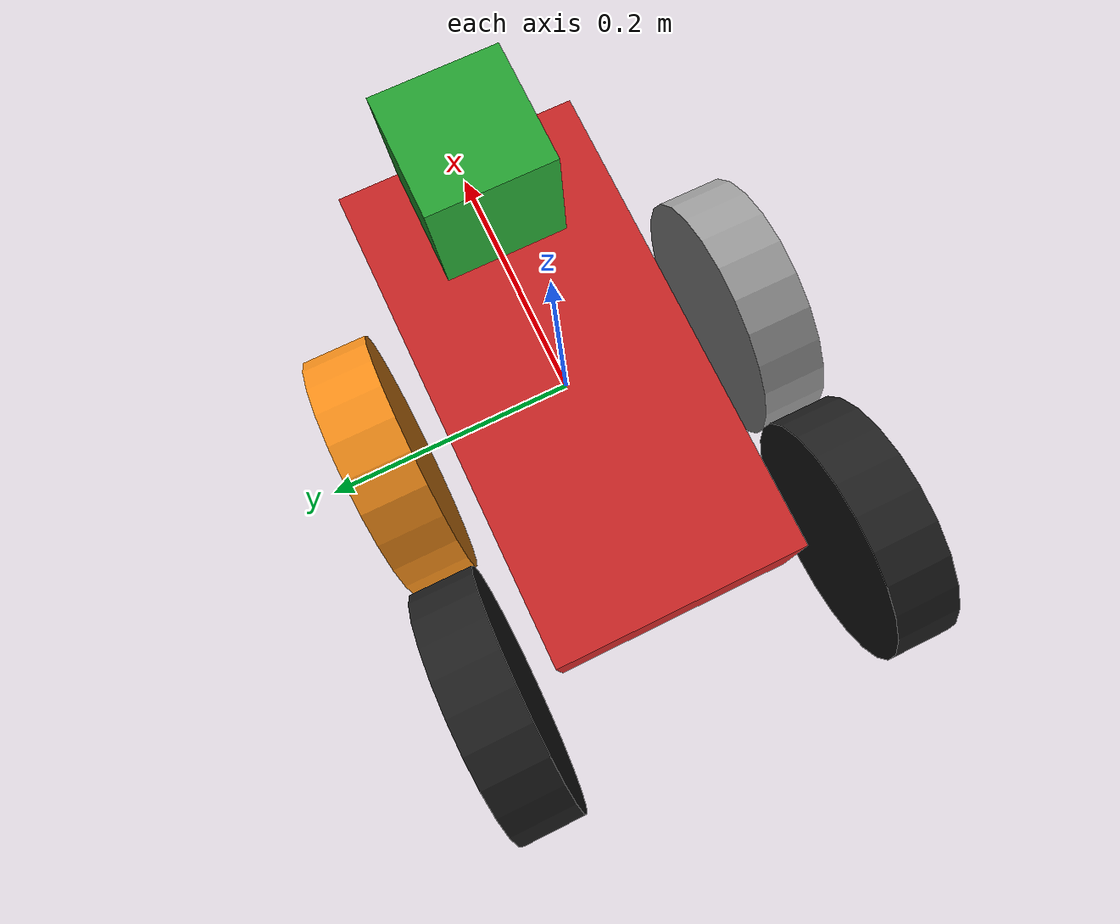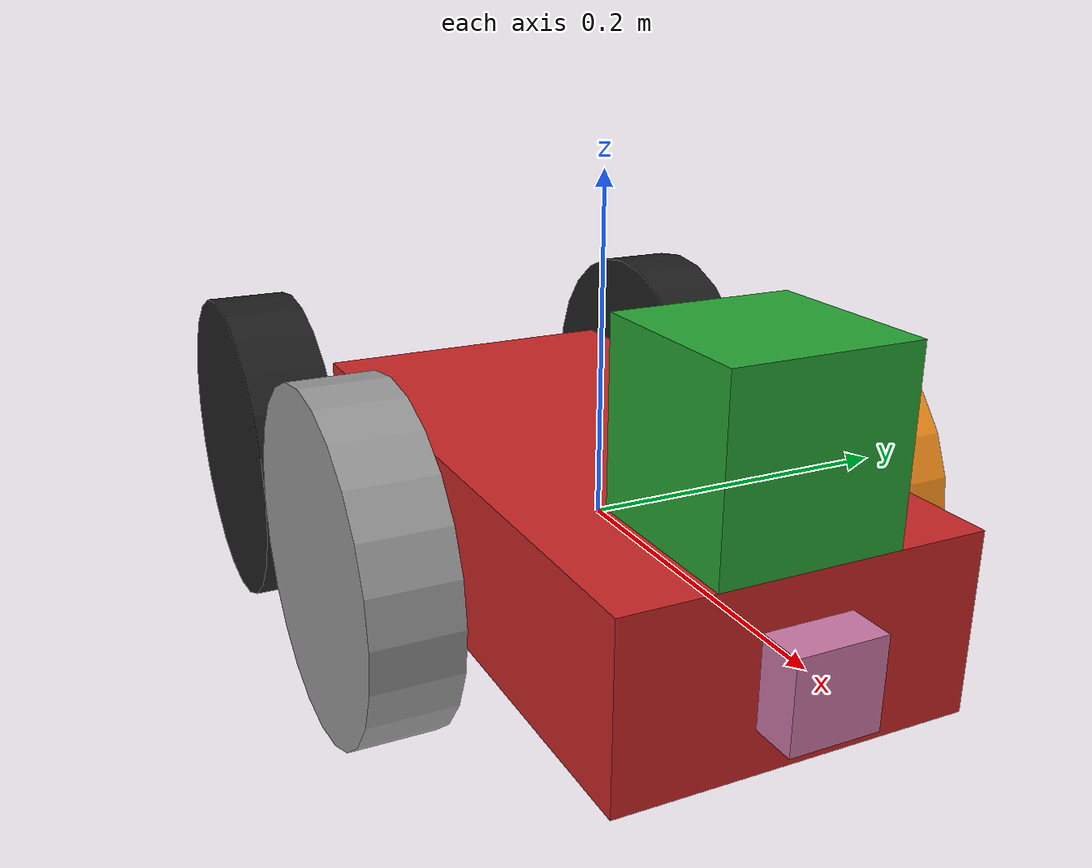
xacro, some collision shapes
<?xml version='1.0'?>

<robot name="my_robot" xmlns:xacro="http://www.ros.org/wiki/xacro">

  <xacro:include filename="$(find my_robot)/urdf/my_robot.gazebo" />
  <!--xacro:include filename="$(find my_robot)/urdf/materials.xacro" /-->

  <link name="robot_footprint"></link>

  <joint name="robot_footprint_joint" type="fixed">
    <origin xyz="0 0 0" rpy="0 0 0" />
    <parent link="robot_footprint"/>
    <child link="chassis" />
  </joint>

  <link name='chassis'>
    <pose>0 0 0.1 0 0 0</pose>

    <inertial>
      <mass value="15.0"/>
      <origin xyz="0.0 0 0" rpy=" 0 0 0"/>
      <inertia
          ixx="0.1" ixy="0" ixz="0"
          iyy="0.1" iyz="0"
          izz="0.1"
      />
    </inertial>

    <collision name='collision'>
      <origin xyz="0 0 0" rpy=" 0 0 0"/>
      <geometry>
        <box size=".4 .2 .1"/>
      </geometry>
    </collision>

    <visual name='chassis_visual'>
      <origin xyz="0 0 0" rpy=" 0 0 0"/>
      <geometry>
        <box size=".4 .2 .1"/>
      </geometry>
    </visual>

  </link>
  <gazebo reference="chassis">
    <material>Gazebo/Red</material>
  </gazebo>

  <link name='left_wheel'>

    <inertial>
      <mass value="5.0"/>
      <origin xyz="0 0 0" rpy=" 0 1.5707 1.5707"/>
      <inertia
          ixx="0.1" ixy="0" ixz="0"
          iyy="0.1" iyz="0"
          izz="0.1"
      />
    </inertial>

    <collision name='left_wheel_collision'>
      <origin xyz="0 0 0" rpy="0 1.5707 1.5707"/>
      <geometry>
        <cylinder length="0.05" radius = ".1"/>
      </geometry>
    </collision>

    <visual name='left_wheel_visual'>
      <origin xyz="0 0 0" rpy="0 1.5707 1.5707"/>
      <geometry>
        <cylinder length="0.05" radius = ".1"/>
      </geometry>
      <material name="orange"/>
    </visual>

  </link>
  <gazebo reference="left_wheel">
    <material>Gazebo/Grey</material>
  </gazebo>

  <link name='right_wheel'>

    <inertial>
      <mass value="5.0"/>
      <origin xyz="0 0 0" rpy=" 0 1.5707 1.5707"/>
      <inertia
          ixx="0.1" ixy="0" ixz="0"
          iyy="0.1" iyz="0"
          izz="0.1"
      />
    </inertial>

    <collision name='right_wheel_collision'>
      <origin xyz="0 0 0" rpy="0 1.5707 1.5707"/>
      <geometry>
        <cylinder length="0.05" radius = ".1"/>
      </geometry>
    </collision>

    <visual name='right_wheel_visual'>
      <origin xyz="0 0 0" rpy="0 1.5707 1.5707"/>
      <geometry>
        <cylinder length="0.05" radius = ".1"/>
      </geometry>
    </visual>

  </link>

  <gazebo reference="right_wheel">
    <material>Gazebo/Grey</material>
  </gazebo>

  <link name='left_rear_wheel'>

    <inertial>
      <mass value="5.0"/>
      <origin xyz="0 0 0" rpy=" 0 1.5707 1.5707"/>
      <inertia
          ixx="0.1" ixy="0" ixz="0"
          iyy="0.1" iyz="0"
          izz="0.1"
      />
    </inertial>

    <collision name='left_rear_wheel_collision'>
      <origin xyz="0 0 0" rpy="0 1.5707 1.5707"/>
      <geometry>
        <cylinder length="0.05" radius = ".1"/>
      </geometry>
    </collision>

    <visual name='left_rear_wheel_visual'>
      <origin xyz="0 0 0" rpy="0 1.5707 1.5707"/>
      <geometry>
        <cylinder length="0.05" radius = ".1"/>
      </geometry>
    </visual>

  </link>

  <gazebo reference="left_rear_wheel">
    <material>Gazebo/Black</material>
  </gazebo>

  <link name='right_rear_wheel'>

    <inertial>
      <mass value="5.0"/>
      <origin xyz="0 0 0" rpy=" 0 1.5707 1.5707"/>
      <inertia
          ixx="0.1" ixy="0" ixz="0"
          iyy="0.1" iyz="0"
          izz="0.1"
      />
    </inertial>

    <collision name='right_rear_wheel_collision'>
      <origin xyz="0 0 0" rpy="0 1.5707 1.5707"/>
      <geometry>
        <cylinder length="0.05" radius = ".1"/>
      </geometry>
    </collision>

    <visual name='right_rear_wheel_visual'>
      <origin xyz="0 0 0" rpy="0 1.5707 1.5707"/>
      <geometry>
        <cylinder length="0.05" radius = ".1"/>
      </geometry>
    </visual>

  </link>

  <gazebo reference="right_rear_wheel">
    <material>Gazebo/Black</material>
  </gazebo>

  <link name='camera'>

    <inertial>
      <mass value="0.1"/>
      <origin xyz="0.05 0.05 0.05" rpy=" 0 0 0"/>
      <inertia
          ixx="1e-6" ixy="0" ixz="0"
          iyy="1e-6" iyz="0"
          izz="1e-6"
      />
    </inertial>

    <collision name='camera_collision'>
      <origin xyz="0 0 0" rpy="0 0 0"/>
      <geometry>
        <box size="0.05 0.05 0.05"/>
      </geometry>
    </collision>

    <visual name='camera_geometry'>
      <origin xyz="0 0 0" rpy="0 0 0"/>
      <geometry>
        <box size="0.05 0.05 0.05"/>
      </geometry>
    </visual>

  </link>

  <link name='hokuyo'>

    <inertial>
      <mass value="1e-5"/>
      <origin xyz="0 0 0" rpy=" 0 0 0"/>
      <inertia
          ixx="1e-6" ixy="0" ixz="0"
          iyy="1e-6" iyz="0"
          izz="1e-6"
      />
    </inertial>

    <collision name='hokuyo_collision'>
      <origin xyz="0 0 0" rpy="0 0 0"/>
      <geometry>
        <box size="0.1 0.1 0.1"/>
      </geometry>
    </collision>

    <visual name='hokuyo_visual'>
      <origin xyz="0 0 0" rpy="0 0 0"/>
      <geometry>
        <mesh filename="package://my_robot/meshes/hokuyo.dae"/>
      </geometry>
    </visual>

  </link>

  <gazebo reference="hokuyo">
    <material>Gazebo/Green</material>
  </gazebo>

  <joint type="continuous" name="left_wheel_hinge">
    <origin xyz="0 0.15 0" rpy="0 0 0"/>
    <child link="left_wheel"/>
    <parent link="chassis"/>
    <axis xyz="0 1 0" rpy="0 0 0"/>
    <limit effort="10000" velocity="1000"/>
    <dynamics damping="1.0" friction="1.0"/>
  </joint>

  <joint type="continuous" name="right_wheel_hinge">
    <origin xyz="0 -0.15 0" rpy="0 0 0"/>
    <child link="right_wheel"/>
    <parent link="chassis"/>
    <axis xyz="0 1 0" rpy="0 0 0"/>
    <limit effort="10000" velocity="1000"/>
    <dynamics damping="1.0" friction="1.0"/>
  </joint>

  <joint type="continuous" name="left_rear_wheel_hinge">
    <origin xyz="-.2 0.15 0" rpy="0 0 0"/>
    <child link="left_rear_wheel"/>
    <parent link="chassis"/>
    <axis xyz="0 1 0" rpy="0 0 0"/>
    <limit effort="10000" velocity="1000"/>
    <dynamics damping="1.0" friction="0.1"/>
  </joint>

  <joint type="continuous" name="right_rear_wheel_hinge">
    <origin xyz="-.2 -0.15 0" rpy="0 0 0"/>
    <child link="right_rear_wheel"/>
    <parent link="chassis"/>
    <axis xyz="0 1 0" rpy="0 0 0"/>
    <limit effort="10000" velocity="1000"/>
    <dynamics damping="1.0" friction="0.1"/>
  </joint>

  <joint type="fixed" name="camera_joint">
    <origin xyz="0.2 0 0" rpy="0 0 0"/>
    <child link="camera"/>
    <parent link="chassis"/>
    <axis xyz="0 1 0" rpy="0 0 0"/>
    <limit effort="10000" velocity="1000"/>
    <dynamics damping="1.0" friction="1.0"/>
  </joint>

  <joint type="fixed" name="hokuyo_joint">
    <origin xyz="0.15 0 0.1" rpy="0 0 0"/>
    <child link="hokuyo"/>
    <parent link="chassis"/>
    <axis xyz="0 1 0" rpy="0 0 0"/>
    <limit effort="10000" velocity="1000"/>
    <dynamics damping="1.0" friction="1.0"/>
  </joint>

</robot>
